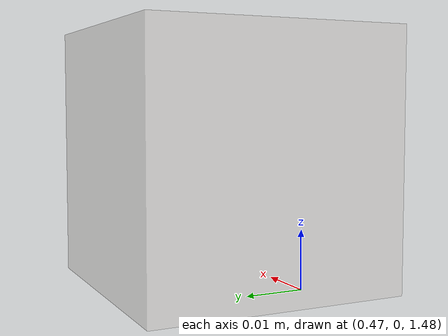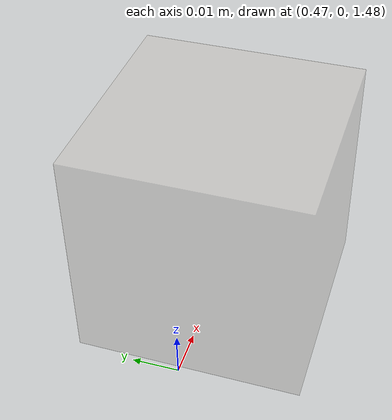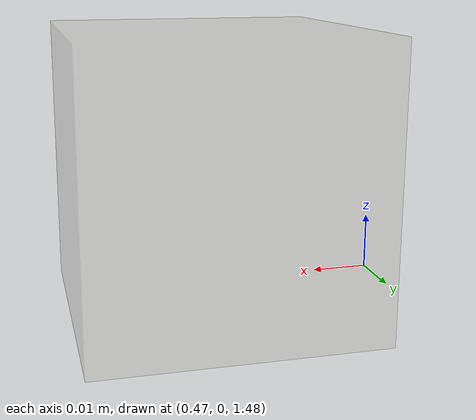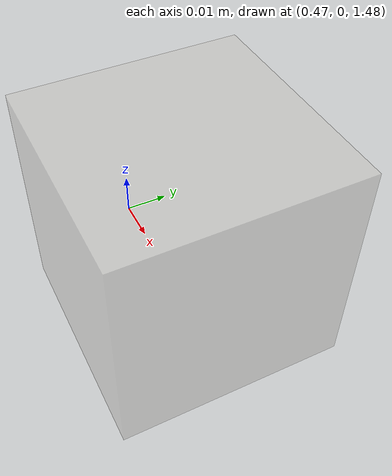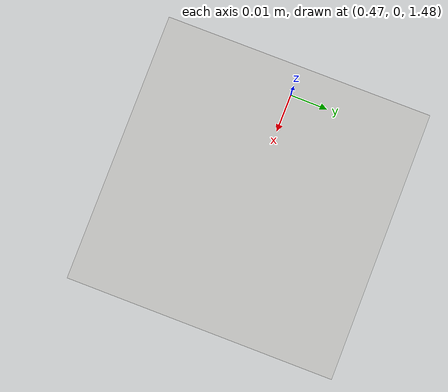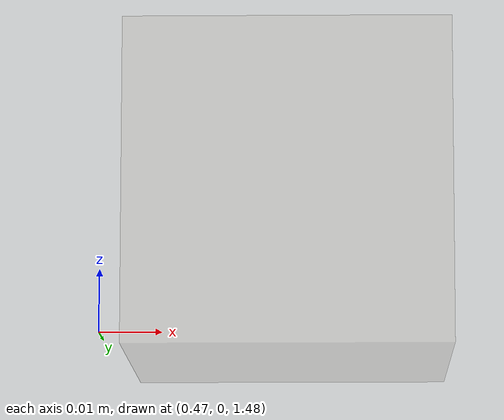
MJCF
<mujoco model="cube_destination">
    <asset>
        <material name="black" rgba="0.1 0.1 0.1 1"/>
        <texture name="texture:object" file="block.png" gridsize="3 4" gridlayout=".U..LFRB.D.."></texture>
        <material name="material:target" texture="texture:object" specular="1" shininess="0.3" reflectance="0" rgba="1 1 1 0.3"></material>
    </asset>

    <default>
        <default class="visual">
            <geom contype="0" conaffinity="0" group="2" material="black"/>
        </default>
    </default>

    <worldbody>
        <body name="cube_destination" pos="0.5 -0 1.5">
            <geom type="box" pos="0 0 0" size="0.025 0.025 0.025" material="material:target" class="visual" density="500"/>
        </body>
    </worldbody>
</mujoco>
